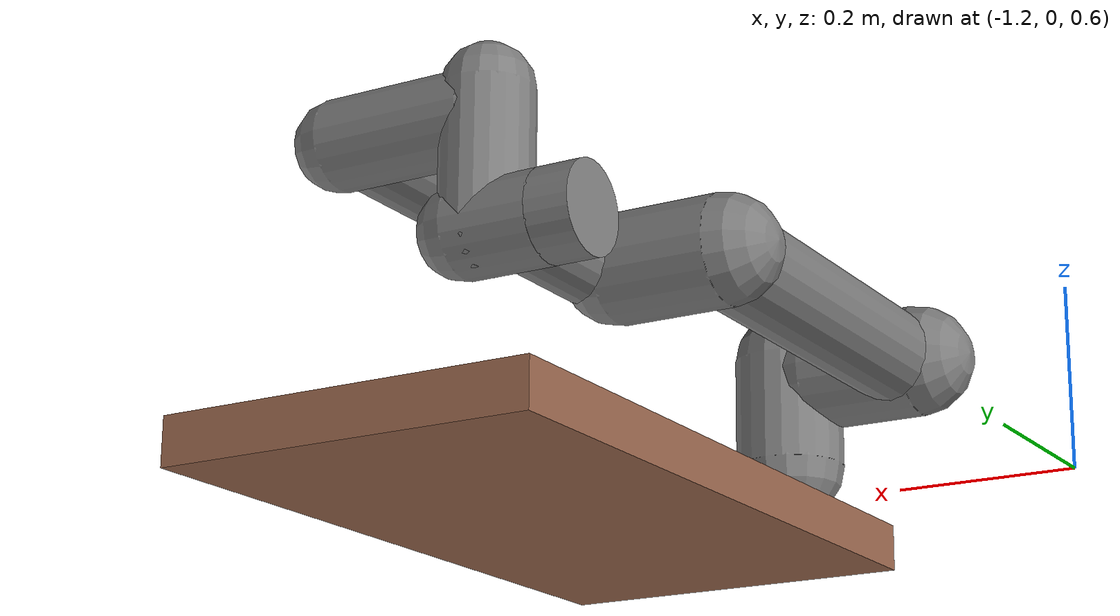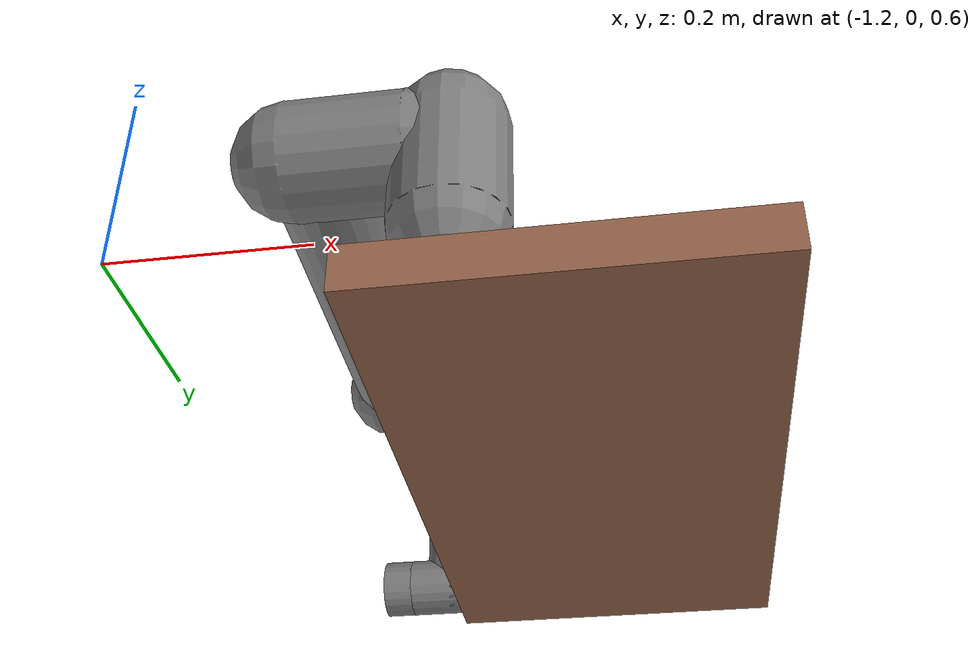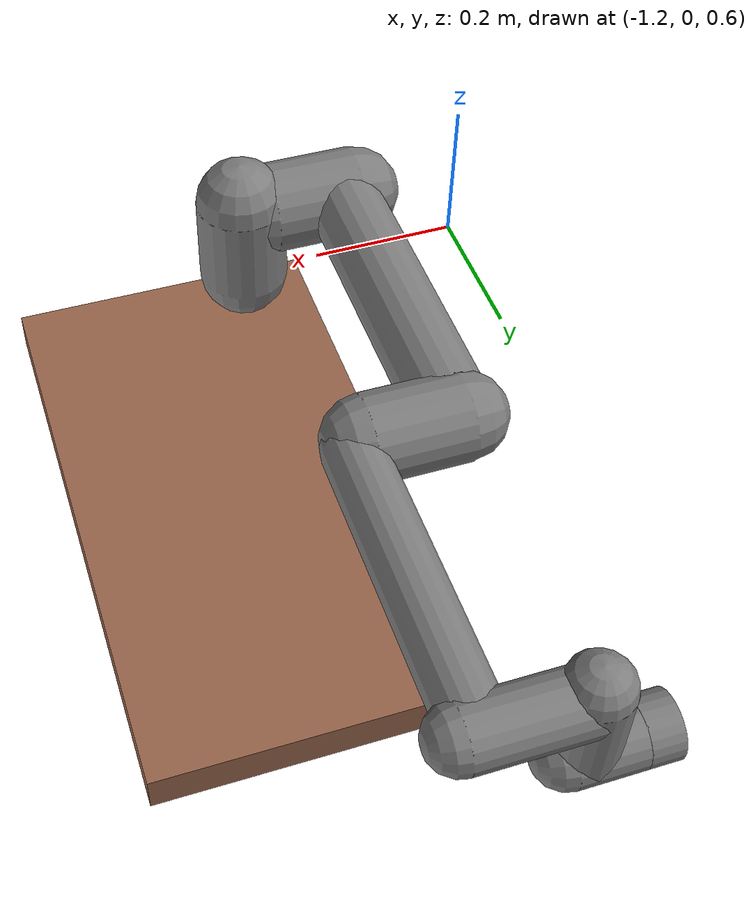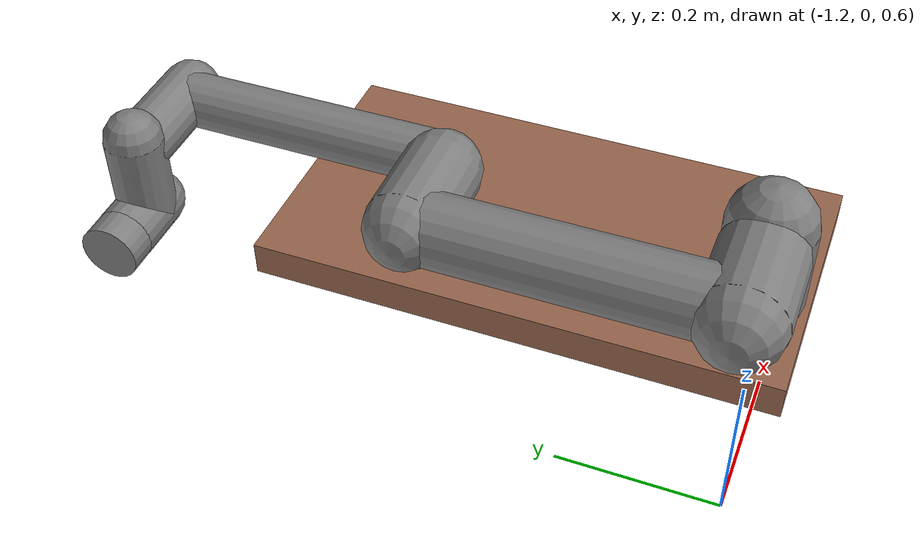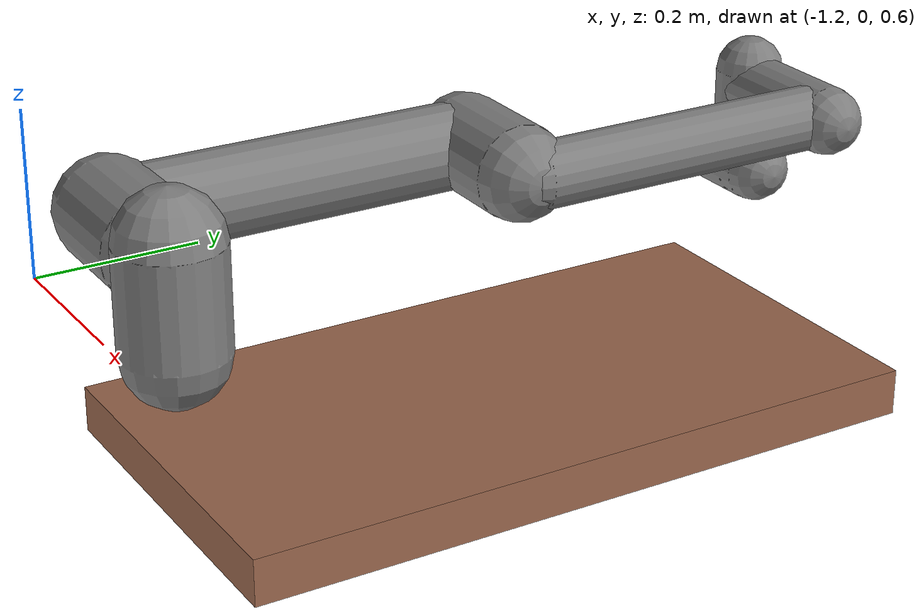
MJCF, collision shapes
<mujoco model="ur5e_2">
  <compiler angle="radian" meshdir="assets" autolimits="true"/>

  <option integrator="implicitfast"/>

  <default>
    <default class="ur5e_2">
      <material specular="0.5" shininess="0.25"/>
      <joint axis="0 1 0" range="-6.28319 6.28319" armature="0.1"/>
      <general gaintype="fixed" biastype="affine" ctrlrange="-6.2831 6.2831" gainprm="2000" biasprm="0 -2000 -400"
        forcerange="-150 150"/>
      <default class="size3_2">
        <default class="size3_limited_2">
          <joint range="-3.1415 3.1415"/>
          <general ctrlrange="-3.1415 3.1415"/>
        </default>
      </default>
      <default class="size1_2">
        <general gainprm="500" biasprm="0 -500 -100" forcerange="-28 28"/>
      </default>
      <default class="visual_2">
        <geom type="mesh" contype="0" conaffinity="0" group="2"/>
      </default>
      <default class="collision_2">
        <geom type="capsule" group="3"/>
        <default class="eef_collision_2">
          <geom type="cylinder"/>
        </default>
      </default>
      <site size="0.001" rgba="0.5 0.5 0.5 0.3" group="4"/>
    </default>
  </default>

  <asset>
    <material class="ur5e_2" name="black_2" rgba="0.033 0.033 0.033 1"/>
    <material class="ur5e_2" name="jointgray_2" rgba="0.278 0.278 0.278 1"/>
    <material class="ur5e_2" name="linkgray_2" rgba="0.82 0.82 0.82 1"/>
    <material class="ur5e_2" name="urblue_2" rgba="0.49 0.678 0.8 1"/>

    <mesh name="base_0_2" file="ur5e/base_0.obj"/>
    <mesh name="base_1_2" file="ur5e/base_1.obj"/>
    <mesh name="shoulder_0_2" file="ur5e/shoulder_0.obj"/>
    <mesh name="shoulder_1_2" file="ur5e/shoulder_1.obj"/>
    <mesh name="shoulder_2_2" file="ur5e/shoulder_2.obj"/>
    <mesh name="upperarm_0_2" file="ur5e/upperarm_0.obj"/>
    <mesh name="upperarm_1_2" file="ur5e/upperarm_1.obj"/>
    <mesh name="upperarm_2_2" file="ur5e/upperarm_2.obj"/>
    <mesh name="upperarm_3_2" file="ur5e/upperarm_3.obj"/>
    <mesh name="forearm_0_2" file="ur5e/forearm_0.obj"/>
    <mesh name="forearm_1_2" file="ur5e/forearm_1.obj"/>
    <mesh name="forearm_2_2" file="ur5e/forearm_2.obj"/>
    <mesh name="forearm_3_2" file="ur5e/forearm_3.obj"/>
    <mesh name="wrist1_0_2" file="ur5e/wrist1_0.obj"/>
    <mesh name="wrist1_1_2" file="ur5e/wrist1_1.obj"/>
    <mesh name="wrist1_2_2" file="ur5e/wrist1_2.obj"/>
    <mesh name="wrist2_0_2" file="ur5e/wrist2_0.obj"/>
    <mesh name="wrist2_1_2" file="ur5e/wrist2_1.obj"/>
    <mesh name="wrist2_2_2" file="ur5e/wrist2_2.obj"/>
    <mesh name="wrist3_2" file="ur5e/wrist3.obj"/>
  </asset>
  <worldbody>
    <light name="spotlight_2" mode="targetbodycom" target="wrist_2_link_2" pos="0 -1 2"/>
    <body name="table_2" pos="-0.776 0.342 0.545">
      <geom name="table_geom_2" type="box" size="0.2 0.375 0.025" rgba="0.6 0.4 0.3 1"/>
      <body name="base_2" quat="1 0 0 1" childclass="ur5e_2" pos="-0.107 -0.31 0.025">
        <inertial mass="4.0" pos="0 0 0" diaginertia="0.00443333156 0.00443333156 0.0072"/>
        <geom mesh="base_0_2" material="black_2" class="visual_2"/>
        <geom mesh="base_1_2" material="jointgray_2" class="visual_2"/>
        <body name="shoulder_link_2" pos="0 0 0.163">
          <inertial mass="3.7" pos="0 0 0" diaginertia="0.0102675 0.0102675 0.00666"/>
          <joint name="shoulder_pan_joint_2" class="size3_2" axis="0 0 1"/>
          <geom mesh="shoulder_0_2" material="urblue_2" class="visual_2"/>
          <geom mesh="shoulder_1_2" material="black_2" class="visual_2"/>
          <geom mesh="shoulder_2_2" material="jointgray_2" class="visual_2"/>
          <geom class="collision_2" size="0.06 0.06" pos="0 0 -0.04"/>
          <body name="upper_arm_link_2" pos="0 0.138 0" quat="1 0 1 0">
            <inertial mass="8.393" pos="0 0 0.2125" diaginertia="0.133886 0.133886 0.0151074"/>
            <joint name="shoulder_lift_joint_2" class="size3_2"/>
            <geom mesh="upperarm_0_2" material="linkgray_2" class="visual_2"/>
            <geom mesh="upperarm_1_2" material="black_2" class="visual_2"/>
            <geom mesh="upperarm_2_2" material="jointgray_2" class="visual_2"/>
            <geom mesh="upperarm_3_2" material="urblue_2" class="visual_2"/>
            <geom class="collision_2" pos="0 -0.04 0" quat="1 1 0 0" size="0.06 0.06"/>
            <geom class="collision_2" size="0.05 0.2" pos="0 0 0.2"/>
            <body name="forearm_link_2" pos="0 -0.131 0.425">
              <inertial mass="2.275" pos="0 0 0.196" diaginertia="0.0311796 0.0311796 0.004095"/>
              <joint name="elbow_joint_2" class="size3_limited_2"/>
              <geom mesh="forearm_0_2" material="urblue_2" class="visual_2"/>
              <geom mesh="forearm_1_2" material="linkgray_2" class="visual_2"/>
              <geom mesh="forearm_2_2" material="black_2" class="visual_2"/>
              <geom mesh="forearm_3_2" material="jointgray_2" class="visual_2"/>
              <geom class="collision_2" pos="0 0.08 0" quat="1 1 0 0" size="0.055 0.06"/>
              <geom class="collision_2" size="0.038 0.19" pos="0 0 0.2"/>
              <body name="wrist_1_link_2" pos="0 0 0.392" quat="1 0 1 0">
                <inertial mass="1.219" pos="0 0.127 0" diaginertia="0.0025599 0.0025599 0.0021942"/>
                <joint name="wrist_1_joint_2" class="size1_2"/>
                <geom mesh="wrist1_0_2" material="black_2" class="visual_2"/>
                <geom mesh="wrist1_1_2" material="urblue_2" class="visual_2"/>
                <geom mesh="wrist1_2_2" material="jointgray_2" class="visual_2"/>
                <geom class="collision_2" pos="0 0.05 0" quat="1 1 0 0" size="0.04 0.07"/>
                <body name="wrist_2_link_2" pos="0 0.127 0">
                  <inertial mass="1.219" pos="0 0 0.1" diaginertia="0.0025599 0.0025599 0.0021942"/>
                  <joint name="wrist_2_joint_2" axis="0 0 1" class="size1_2"/>
                  <geom mesh="wrist2_0_2" material="black_2" class="visual_2"/>
                  <geom mesh="wrist2_1_2" material="urblue_2" class="visual_2"/>
                  <geom mesh="wrist2_2_2" material="jointgray_2" class="visual_2"/>
                  <geom class="collision_2" size="0.04 0.06" pos="0 0 0.04"/>
                  <geom class="collision_2" pos="0 0.02 0.1" quat="1 1 0 0" size="0.04 0.04"/>
                  <body name="wrist_3_link_2" pos="0 0 0.1">
                    <inertial mass="0.1889" pos="0 0.0771683 0" quat="1 0 0 1"
                      diaginertia="0.000132134 9.90863e-05 9.90863e-05"/>
                    <joint name="wrist_3_joint_2" class="size1_2"/>
                    <geom material="linkgray_2" mesh="wrist3_2" class="visual_2"/>
                    <geom class="eef_collision_2" pos="0 0.08 0" quat="1 1 0 0" size="0.04 0.02"/>
                    <site name="attachment_site_2" pos="0 0.1 0" quat="-1 1 0 0"/>
                  </body>
                </body>
              </body>
            </body>
          </body>
        </body>
      </body>
    </body>
  </worldbody>

  <actuator>
    <general class="size3_2" name="shoulder_pan_2" joint="shoulder_pan_joint_2"/>
    <general class="size3_2" name="shoulder_lift_2" joint="shoulder_lift_joint_2"/>
    <general class="size3_limited_2" name="elbow_2" joint="elbow_joint_2"/>
    <general class="size1_2" name="wrist_1_2" joint="wrist_1_joint_2"/>
    <general class="size1_2" name="wrist_2_2" joint="wrist_2_joint_2"/>
    <general class="size1_2" name="wrist_3_2" joint="wrist_3_joint_2"/>
  </actuator>

</mujoco>
